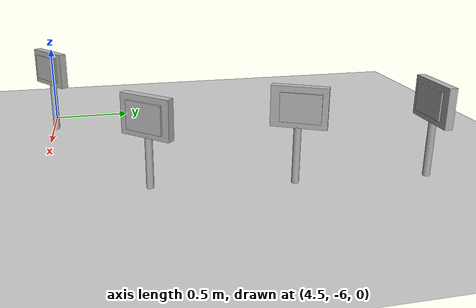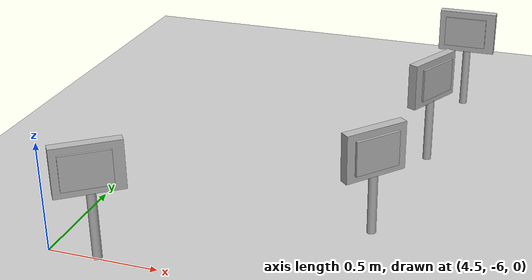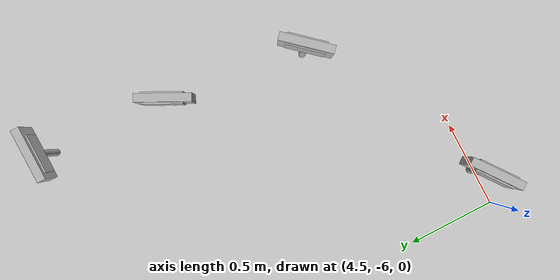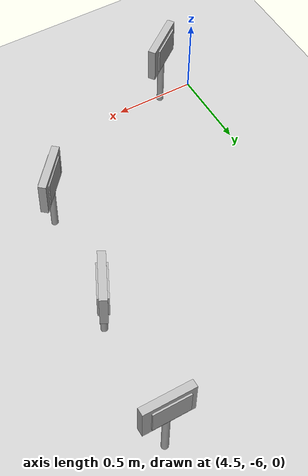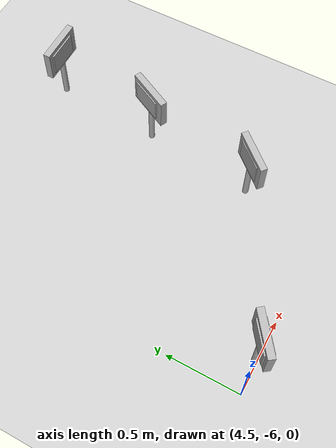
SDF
<sdf version="1.7">
 <world name="default">
  <model name="ground_plane">
   <static>1</static>
   <link name="link">
    <collision name="collision">
     <geometry><plane><normal>0 0 1</normal><size>100 100</size></plane></geometry>
     <surface>
      <contact><collide_bitmask>65535</collide_bitmask></contact>
      <friction><ode><mu>100</mu><mu2>50</mu2></ode></friction>
     </surface>
    </collision>
    <visual name="visual">
     <cast_shadows>0</cast_shadows>
     <geometry><plane><normal>0 0 1</normal><size>100 100</size></plane></geometry>
     <material>
      <script><uri>file://media/materials/scripts/gazebo.material</uri><name>Gazebo/Grey</name></script>
     </material>
    </visual>
   </link>
  </model>
  <model name="letrero_cheems_0">
   <link name="link_0">
    <inertial>
     <mass>0.00543151</mass>
     <inertia>
      <ixx>4.90351e-06</ixx>
      <ixy>0</ixy>
      <ixz>0</ixz>
      <iyy>4.90351e-06</iyy>
      <iyz>0</iyz>
      <izz>1.12837e-07</izz>
     </inertia>
    </inertial>
    <pose>0.002372 -0.000902 -0.178803 0 -0 0</pose>
    <visual name="visual">
     <geometry><cylinder><radius>0.0203836</radius><length>0.327243</length></cylinder></geometry>
     <material>
      <lighting>1</lighting>
      <script>
       <uri>model://letrero_cheems/madera/scripts</uri>
       <uri>model://letrero_cheems/madera/textures</uri>
       <name>textur/madera</name>
      </script>
      <shader type="pixel"/>
      <emissive>0 0 0 1</emissive>
     </material>
    </visual>
    <collision name="collision">
     <geometry><cylinder><radius>0.020384</radius><length>0.327243</length></cylinder></geometry>
     <surface>
      <friction>
       <ode><mu>1</mu><mu2>1</mu2><fdir1>0 0 0</fdir1><slip1>0</slip1><slip2>0</slip2></ode>
       <torsional>
        <coefficient>1</coefficient>
        <patch_radius>0</patch_radius>
        <surface_radius>0</surface_radius>
        <use_patch_radius>1</use_patch_radius>
        <ode><slip>0</slip></ode>
       </torsional>
      </friction>
      <bounce><restitution_coefficient>0</restitution_coefficient><threshold>1e+06</threshold></bounce>
      <contact>
       <collide_without_contact>0</collide_without_contact>
       <collide_without_contact_bitmask>1</collide_without_contact_bitmask>
       <collide_bitmask>1</collide_bitmask>
       <ode>
        <soft_cfm>0</soft_cfm>
        <soft_erp>0.2</soft_erp>
        <kp>1e+13</kp>
        <kd>1</kd>
        <max_vel>0.01</max_vel>
        <min_depth>0</min_depth>
       </ode>
       <bullet>
        <split_impulse>1</split_impulse>
        <split_impulse_penetration_threshold>-0.01</split_impulse_penetration_threshold>
        <soft_cfm>0</soft_cfm>
        <soft_erp>0.2</soft_erp>
        <kp>1e+13</kp>
        <kd>1</kd>
       </bullet>
      </contact>
     </surface>
    </collision>
   </link>
   <link name="link_1">
    <inertial>
     <mass>0.00299633</mass>
     <inertia>
      <ixx>1.27855e-05</ixx>
      <ixy>0</ixy>
      <ixz>0</ixz>
      <iyy>3.42923e-05</iyy>
      <iyz>0</iyz>
      <izz>2.25402e-05</izz>
     </inertia>
    </inertial>
    <pose>-0.001685 -0.003559 0.089666 0 -0 0</pose>
    <visual name="visual">
     <geometry><box><size>0.296988 0.04549 0.221665</size></box></geometry>
     <material>
      <lighting>1</lighting>
      <script>
       <uri>model://letrero_cheems/madera/scripts</uri>
       <uri>model://letrero_cheems/madera/textures</uri>
       <name>textur/madera</name>
      </script>
      <shader type="pixel"/>
      <emissive>0 0 0 1</emissive>
     </material>
    </visual>
    <collision name="collision">
     <geometry><box><size>0.296988 0.04549 0.221665</size></box></geometry>
     <surface>
      <friction>
       <ode><mu>1</mu><mu2>1</mu2><fdir1>0 0 0</fdir1><slip1>0</slip1><slip2>0</slip2></ode>
       <torsional>
        <coefficient>1</coefficient>
        <patch_radius>0</patch_radius>
        <surface_radius>0</surface_radius>
        <use_patch_radius>1</use_patch_radius>
        <ode><slip>0</slip></ode>
       </torsional>
      </friction>
      <bounce><restitution_coefficient>0</restitution_coefficient><threshold>1e+06</threshold></bounce>
      <contact>
       <collide_without_contact>0</collide_without_contact>
       <collide_without_contact_bitmask>1</collide_without_contact_bitmask>
       <collide_bitmask>1</collide_bitmask>
       <ode>
        <soft_cfm>0</soft_cfm>
        <soft_erp>0.2</soft_erp>
        <kp>1e+13</kp>
        <kd>1</kd>
        <max_vel>0.01</max_vel>
        <min_depth>0</min_depth>
       </ode>
       <bullet>
        <split_impulse>1</split_impulse>
        <split_impulse_penetration_threshold>-0.01</split_impulse_penetration_threshold>
        <soft_cfm>0</soft_cfm>
        <soft_erp>0.2</soft_erp>
        <kp>1e+13</kp>
        <kd>1</kd>
       </bullet>
      </contact>
     </surface>
    </collision>
   </link>
   <link name="link_2">
    <inertial>
     <mass>0.00219695</mass>
     <inertia>
      <ixx>5.34209e-06</ixx>
      <ixy>0</ixy>
      <ixz>0</ixz>
      <iyy>1.31531e-05</iyy>
      <iyz>0</iyz>
      <izz>9.31738e-06</izz>
     </inertia>
    </inertial>
    <pose>-0.001275 -0.005928 0.089136 0 -0 0</pose>
    <visual name="visual">
     <geometry><box><size>0.216284 0.06414 0.15832</size></box></geometry>
     <material>
      <lighting>1</lighting>
      <script>
       <uri>model://letrero_cheems/materials/scripts</uri>
       <uri>model://letrero_cheems/materials/textures</uri>
       <name>textur/cheems</name>
      </script>
      <shader type="pixel"/>
      <emissive>0 0 0 1</emissive>
     </material>
    </visual>
    <collision name="collision">
     <geometry><box><size>0.216284 0.06414 0.15832</size></box></geometry>
     <surface>
      <friction>
       <ode><mu>1</mu><mu2>1</mu2><fdir1>0 0 0</fdir1><slip1>0</slip1><slip2>0</slip2></ode>
       <torsional>
        <coefficient>1</coefficient>
        <patch_radius>0</patch_radius>
        <surface_radius>0</surface_radius>
        <use_patch_radius>1</use_patch_radius>
        <ode><slip>0</slip></ode>
       </torsional>
      </friction>
      <bounce><restitution_coefficient>0</restitution_coefficient><threshold>1e+06</threshold></bounce>
      <contact>
       <collide_without_contact>0</collide_without_contact>
       <collide_without_contact_bitmask>1</collide_without_contact_bitmask>
       <collide_bitmask>1</collide_bitmask>
       <ode>
        <soft_cfm>0</soft_cfm>
        <soft_erp>0.2</soft_erp>
        <kp>1e+13</kp>
        <kd>1</kd>
        <max_vel>0.01</max_vel>
        <min_depth>0</min_depth>
       </ode>
       <bullet>
        <split_impulse>1</split_impulse>
        <split_impulse_penetration_threshold>-0.01</split_impulse_penetration_threshold>
        <soft_cfm>0</soft_cfm>
        <soft_erp>0.2</soft_erp>
        <kp>1e+13</kp>
        <kd>1</kd>
       </bullet>
      </contact>
     </surface>
    </collision>
   </link>
   <joint name="link_0_JOINT_1" type="fixed">
    <parent>link_0</parent>
    <child>link_1</child>
    <physics>
     <ode><limit><cfm>0</cfm><erp>0.2</erp></limit><suspension><cfm>0</cfm><erp>0.2</erp></suspension></ode>
    </physics>
   </joint>
   <joint name="link_0_JOINT_2" type="fixed">
    <parent>link_0</parent>
    <child>link_2</child>
    <physics>
     <ode><limit><cfm>0</cfm><erp>0.2</erp></limit><suspension><cfm>0</cfm><erp>0.2</erp></suspension></ode>
    </physics>
   </joint>
   <static>1</static>
   <pose>5.75191 -5.44165 0.303948 0 -0 0.847222</pose>
  </model>
  <model name="letrero_chocho_2">
   <link name="link_0">
    <inertial>
     <mass>0.0543151</mass>
     <inertia>
      <ixx>4.90351e-06</ixx>
      <ixy>0</ixy>
      <ixz>0</ixz>
      <iyy>4.90351e-06</iyy>
      <iyz>0</iyz>
      <izz>1.12837e-07</izz>
     </inertia>
    </inertial>
    <pose>0.002515 0.005109 0.153562 0 -0 0</pose>
    <visual name="visual">
     <geometry><cylinder><radius>0.0203836</radius><length>0.327243</length></cylinder></geometry>
     <material>
      <lighting>1</lighting>
      <script>
       <uri>model://letrero_chocho/madera/scripts</uri>
       <uri>model://letrero_chocho/madera/textures</uri>
       <name>textur/madera</name>
      </script>
      <shader type="pixel"/>
      <emissive>0 0 0 1</emissive>
     </material>
    </visual>
    <collision name="collision">
     <geometry><cylinder><radius>0.020384</radius><length>0.327243</length></cylinder></geometry>
     <surface>
      <friction>
       <ode><mu>1</mu><mu2>1</mu2><fdir1>0 0 0</fdir1><slip1>0</slip1><slip2>0</slip2></ode>
       <torsional>
        <coefficient>1</coefficient>
        <patch_radius>0</patch_radius>
        <surface_radius>0</surface_radius>
        <use_patch_radius>1</use_patch_radius>
        <ode><slip>0</slip></ode>
       </torsional>
      </friction>
      <bounce><restitution_coefficient>0</restitution_coefficient><threshold>1e+06</threshold></bounce>
      <contact>
       <collide_without_contact>0</collide_without_contact>
       <collide_without_contact_bitmask>1</collide_without_contact_bitmask>
       <collide_bitmask>1</collide_bitmask>
       <ode>
        <soft_cfm>0</soft_cfm>
        <soft_erp>0.2</soft_erp>
        <kp>1e+13</kp>
        <kd>1</kd>
        <max_vel>0.01</max_vel>
        <min_depth>0</min_depth>
       </ode>
       <bullet>
        <split_impulse>1</split_impulse>
        <split_impulse_penetration_threshold>-0.01</split_impulse_penetration_threshold>
        <soft_cfm>0</soft_cfm>
        <soft_erp>0.2</soft_erp>
        <kp>1e+13</kp>
        <kd>1</kd>
       </bullet>
      </contact>
     </surface>
    </collision>
   </link>
   <link name="link_1">
    <inertial>
     <mass>0.00299633</mass>
     <inertia>
      <ixx>1.27855e-05</ixx>
      <ixy>0</ixy>
      <ixz>0</ixz>
      <iyy>3.42923e-05</iyy>
      <iyz>0</iyz>
      <izz>2.25402e-05</izz>
     </inertia>
    </inertial>
    <pose>-0.001542 0.002452 0.422031 0 -0 0</pose>
    <visual name="visual">
     <geometry><box><size>0.296988 0.04549 0.221665</size></box></geometry>
     <material>
      <lighting>1</lighting>
      <script>
       <uri>model://letrero_chocho/madera/scripts</uri>
       <uri>model://letrero_chocho/madera/textures</uri>
       <name>textur/madera</name>
      </script>
      <shader type="pixel"/>
      <emissive>0 0 0 1</emissive>
     </material>
    </visual>
    <collision name="collision">
     <geometry><box><size>0.296988 0.04549 0.221665</size></box></geometry>
     <surface>
      <friction>
       <ode><mu>1</mu><mu2>1</mu2><fdir1>0 0 0</fdir1><slip1>0</slip1><slip2>0</slip2></ode>
       <torsional>
        <coefficient>1</coefficient>
        <patch_radius>0</patch_radius>
        <surface_radius>0</surface_radius>
        <use_patch_radius>1</use_patch_radius>
        <ode><slip>0</slip></ode>
       </torsional>
      </friction>
      <bounce><restitution_coefficient>0</restitution_coefficient><threshold>1e+06</threshold></bounce>
      <contact>
       <collide_without_contact>0</collide_without_contact>
       <collide_without_contact_bitmask>1</collide_without_contact_bitmask>
       <collide_bitmask>1</collide_bitmask>
       <ode>
        <soft_cfm>0</soft_cfm>
        <soft_erp>0.2</soft_erp>
        <kp>1e+13</kp>
        <kd>1</kd>
        <max_vel>0.01</max_vel>
        <min_depth>0</min_depth>
       </ode>
       <bullet>
        <split_impulse>1</split_impulse>
        <split_impulse_penetration_threshold>-0.01</split_impulse_penetration_threshold>
        <soft_cfm>0</soft_cfm>
        <soft_erp>0.2</soft_erp>
        <kp>1e+13</kp>
        <kd>1</kd>
       </bullet>
      </contact>
     </surface>
    </collision>
   </link>
   <link name="link_2">
    <inertial>
     <mass>0.00173577</mass>
     <inertia>
      <ixx>4.23206e-06</ixx>
      <ixy>0</ixy>
      <ixz>0</ixz>
      <iyy>1.03921e-05</iyy>
      <iyz>0</iyz>
      <izz>7.37287e-06</izz>
     </inertia>
    </inertial>
    <pose>-0.010225 0.002657 0.421501 0 -0 0</pose>
    <visual name="visual">
     <geometry><box><size>0.216284 0.064749 0.15832</size></box></geometry>
     <material>
      <lighting>1</lighting>
      <script>
       <uri>model://letrero_chocho/materials/scripts</uri>
       <uri>model://letrero_chocho/materials/textures</uri>
       <name>textur/cho</name>
      </script>
      <shader type="pixel"/>
      <emissive>0 0 0 1</emissive>
     </material>
    </visual>
    <collision name="collision">
     <geometry><box><size>0.216284 0.064749 0.15832</size></box></geometry>
     <surface>
      <friction>
       <ode><mu>1</mu><mu2>1</mu2><fdir1>0 0 0</fdir1><slip1>0</slip1><slip2>0</slip2></ode>
       <torsional>
        <coefficient>1</coefficient>
        <patch_radius>0</patch_radius>
        <surface_radius>0</surface_radius>
        <use_patch_radius>1</use_patch_radius>
        <ode><slip>0</slip></ode>
       </torsional>
      </friction>
      <bounce><restitution_coefficient>0</restitution_coefficient><threshold>1e+06</threshold></bounce>
      <contact>
       <collide_without_contact>0</collide_without_contact>
       <collide_without_contact_bitmask>1</collide_without_contact_bitmask>
       <collide_bitmask>1</collide_bitmask>
       <ode>
        <soft_cfm>0</soft_cfm>
        <soft_erp>0.2</soft_erp>
        <kp>1e+13</kp>
        <kd>1</kd>
        <max_vel>0.01</max_vel>
        <min_depth>0</min_depth>
       </ode>
       <bullet>
        <split_impulse>1</split_impulse>
        <split_impulse_penetration_threshold>-0.01</split_impulse_penetration_threshold>
        <soft_cfm>0</soft_cfm>
        <soft_erp>0.2</soft_erp>
        <kp>1e+13</kp>
        <kd>1</kd>
       </bullet>
      </contact>
     </surface>
    </collision>
   </link>
   <joint name="link_0_JOINT_1" type="fixed">
    <parent>link_0</parent>
    <child>link_1</child>
    <physics>
     <ode><limit><cfm>0</cfm><erp>0.2</erp></limit><suspension><cfm>0</cfm><erp>0.2</erp></suspension></ode>
    </physics>
   </joint>
   <joint name="link_0_JOINT_2" type="fixed">
    <parent>link_0</parent>
    <child>link_2</child>
    <physics>
     <ode><limit><cfm>0</cfm><erp>0.2</erp></limit><suspension><cfm>0</cfm><erp>0.2</erp></suspension></ode>
    </physics>
   </joint>
   <static>1</static>
   <pose>5.84295 -4.66823 0 0 0 -2.03941</pose>
  </model>
  <model name="letrero_riego_1">
   <link name="link_0">
    <inertial>
     <mass>0.0543151</mass>
     <inertia>
      <ixx>4.90351e-06</ixx>
      <ixy>0</ixy>
      <ixz>0</ixz>
      <iyy>4.90351e-06</iyy>
      <iyz>0</iyz>
      <izz>1.12837e-07</izz>
     </inertia>
    </inertial>
    <pose>0.002515 0.005109 0.153562 0 -0 0</pose>
    <visual name="visual">
     <geometry><cylinder><radius>0.0203836</radius><length>0.327243</length></cylinder></geometry>
     <material>
      <lighting>1</lighting>
      <script>
       <uri>model://letrero_riego/madera/scripts</uri>
       <uri>model://letrero_riego/madera/textures</uri>
       <name>textur/madera</name>
      </script>
      <shader type="pixel"/>
      <emissive>0 0 0 1</emissive>
     </material>
    </visual>
    <collision name="collision">
     <geometry><cylinder><radius>0.020384</radius><length>0.327243</length></cylinder></geometry>
     <surface>
      <friction>
       <ode><mu>1</mu><mu2>1</mu2><fdir1>0 0 0</fdir1><slip1>0</slip1><slip2>0</slip2></ode>
       <torsional>
        <coefficient>1</coefficient>
        <patch_radius>0</patch_radius>
        <surface_radius>0</surface_radius>
        <use_patch_radius>1</use_patch_radius>
        <ode><slip>0</slip></ode>
       </torsional>
      </friction>
      <bounce><restitution_coefficient>0</restitution_coefficient><threshold>1e+06</threshold></bounce>
      <contact>
       <collide_without_contact>0</collide_without_contact>
       <collide_without_contact_bitmask>1</collide_without_contact_bitmask>
       <collide_bitmask>1</collide_bitmask>
       <ode>
        <soft_cfm>0</soft_cfm>
        <soft_erp>0.2</soft_erp>
        <kp>1e+13</kp>
        <kd>1</kd>
        <max_vel>0.01</max_vel>
        <min_depth>0</min_depth>
       </ode>
       <bullet>
        <split_impulse>1</split_impulse>
        <split_impulse_penetration_threshold>-0.01</split_impulse_penetration_threshold>
        <soft_cfm>0</soft_cfm>
        <soft_erp>0.2</soft_erp>
        <kp>1e+13</kp>
        <kd>1</kd>
       </bullet>
      </contact>
     </surface>
    </collision>
   </link>
   <link name="link_1">
    <inertial>
     <mass>0.00299633</mass>
     <inertia>
      <ixx>1.27855e-05</ixx>
      <ixy>0</ixy>
      <ixz>0</ixz>
      <iyy>3.42923e-05</iyy>
      <iyz>0</iyz>
      <izz>2.25402e-05</izz>
     </inertia>
    </inertial>
    <pose>-0.001542 0.002452 0.422031 0 -0 0</pose>
    <visual name="visual">
     <geometry><box><size>0.296988 0.04549 0.221665</size></box></geometry>
     <material>
      <lighting>1</lighting>
      <script>
       <uri>model://letrero_riego/madera/scripts</uri>
       <uri>model://letrero_riego/madera/textures</uri>
       <name>textur/madera</name>
      </script>
      <shader type="pixel"/>
      <emissive>0 0 0 1</emissive>
     </material>
    </visual>
    <collision name="collision">
     <geometry><box><size>0.296988 0.04549 0.221665</size></box></geometry>
     <surface>
      <friction>
       <ode><mu>1</mu><mu2>1</mu2><fdir1>0 0 0</fdir1><slip1>0</slip1><slip2>0</slip2></ode>
       <torsional>
        <coefficient>1</coefficient>
        <patch_radius>0</patch_radius>
        <surface_radius>0</surface_radius>
        <use_patch_radius>1</use_patch_radius>
        <ode><slip>0</slip></ode>
       </torsional>
      </friction>
      <bounce><restitution_coefficient>0</restitution_coefficient><threshold>1e+06</threshold></bounce>
      <contact>
       <collide_without_contact>0</collide_without_contact>
       <collide_without_contact_bitmask>1</collide_without_contact_bitmask>
       <collide_bitmask>1</collide_bitmask>
       <ode>
        <soft_cfm>0</soft_cfm>
        <soft_erp>0.2</soft_erp>
        <kp>1e+13</kp>
        <kd>1</kd>
        <max_vel>0.01</max_vel>
        <min_depth>0</min_depth>
       </ode>
       <bullet>
        <split_impulse>1</split_impulse>
        <split_impulse_penetration_threshold>-0.01</split_impulse_penetration_threshold>
        <soft_cfm>0</soft_cfm>
        <soft_erp>0.2</soft_erp>
        <kp>1e+13</kp>
        <kd>1</kd>
       </bullet>
      </contact>
     </surface>
    </collision>
   </link>
   <link name="link_2">
    <inertial>
     <mass>0.00173577</mass>
     <inertia>
      <ixx>4.23206e-06</ixx>
      <ixy>0</ixy>
      <ixz>0</ixz>
      <iyy>1.03921e-05</iyy>
      <iyz>0</iyz>
      <izz>7.37287e-06</izz>
     </inertia>
    </inertial>
    <pose>-0.010225 0.002657 0.421501 0 -0 0</pose>
    <visual name="visual">
     <geometry><box><size>0.216284 0.064749 0.15832</size></box></geometry>
     <material>
      <lighting>1</lighting>
      <script>
       <uri>model://letrero_riego/materials/scripts</uri>
       <uri>model://letrero_riego/materials/textures</uri>
       <name>textur/riego</name>
      </script>
      <shader type="pixel"/>
      <emissive>0 0 0 1</emissive>
     </material>
    </visual>
    <collision name="collision">
     <geometry><box><size>0.216284 0.064749 0.15832</size></box></geometry>
     <surface>
      <friction>
       <ode><mu>1</mu><mu2>1</mu2><fdir1>0 0 0</fdir1><slip1>0</slip1><slip2>0</slip2></ode>
       <torsional>
        <coefficient>1</coefficient>
        <patch_radius>0</patch_radius>
        <surface_radius>0</surface_radius>
        <use_patch_radius>1</use_patch_radius>
        <ode><slip>0</slip></ode>
       </torsional>
      </friction>
      <bounce><restitution_coefficient>0</restitution_coefficient><threshold>1e+06</threshold></bounce>
      <contact>
       <collide_without_contact>0</collide_without_contact>
       <collide_without_contact_bitmask>1</collide_without_contact_bitmask>
       <collide_bitmask>1</collide_bitmask>
       <ode>
        <soft_cfm>0</soft_cfm>
        <soft_erp>0.2</soft_erp>
        <kp>1e+13</kp>
        <kd>1</kd>
        <max_vel>0.01</max_vel>
        <min_depth>0</min_depth>
       </ode>
       <bullet>
        <split_impulse>1</split_impulse>
        <split_impulse_penetration_threshold>-0.01</split_impulse_penetration_threshold>
        <soft_cfm>0</soft_cfm>
        <soft_erp>0.2</soft_erp>
        <kp>1e+13</kp>
        <kd>1</kd>
       </bullet>
      </contact>
     </surface>
    </collision>
   </link>
   <joint name="link_0_JOINT_1" type="fixed">
    <parent>link_0</parent>
    <child>link_1</child>
    <physics>
     <ode><limit><cfm>0</cfm><erp>0.2</erp></limit><suspension><cfm>0</cfm><erp>0.2</erp></suspension></ode>
    </physics>
   </joint>
   <joint name="link_0_JOINT_2" type="fixed">
    <parent>link_0</parent>
    <child>link_2</child>
    <physics>
     <ode><limit><cfm>0</cfm><erp>0.2</erp></limit><suspension><cfm>0</cfm><erp>0.2</erp></suspension></ode>
    </physics>
   </joint>
   <static>1</static>
   <pose>5.90462 -3.93684 0 0 -0 0</pose>
  </model>
  <model name="letrero_pajaro_5">
   <link name="link_0">
    <inertial>
     <mass>0.0543151</mass>
     <inertia>
      <ixx>4.90351e-06</ixx>
      <ixy>0</ixy>
      <ixz>0</ixz>
      <iyy>4.90351e-06</iyy>
      <iyz>0</iyz>
      <izz>1.12837e-07</izz>
     </inertia>
    </inertial>
    <pose>0.002515 0.005109 0.153562 0 -0 0</pose>
    <visual name="visual">
     <geometry><cylinder><radius>0.0203836</radius><length>0.327243</length></cylinder></geometry>
     <material>
      <lighting>1</lighting>
      <script>
       <uri>model://letrero_pajaro/madera/scripts</uri>
       <uri>model://letrero_pajaro/madera/textures</uri>
       <name>textur/madera</name>
      </script>
      <shader type="pixel"/>
      <emissive>0 0 0 1</emissive>
     </material>
    </visual>
    <collision name="collision">
     <geometry><cylinder><radius>0.020384</radius><length>0.327243</length></cylinder></geometry>
     <surface>
      <friction>
       <ode><mu>1</mu><mu2>1</mu2><fdir1>0 0 0</fdir1><slip1>0</slip1><slip2>0</slip2></ode>
       <torsional>
        <coefficient>1</coefficient>
        <patch_radius>0</patch_radius>
        <surface_radius>0</surface_radius>
        <use_patch_radius>1</use_patch_radius>
        <ode><slip>0</slip></ode>
       </torsional>
      </friction>
      <bounce><restitution_coefficient>0</restitution_coefficient><threshold>1e+06</threshold></bounce>
      <contact>
       <collide_without_contact>0</collide_without_contact>
       <collide_without_contact_bitmask>1</collide_without_contact_bitmask>
       <collide_bitmask>1</collide_bitmask>
       <ode>
        <soft_cfm>0</soft_cfm>
        <soft_erp>0.2</soft_erp>
        <kp>1e+13</kp>
        <kd>1</kd>
        <max_vel>0.01</max_vel>
        <min_depth>0</min_depth>
       </ode>
       <bullet>
        <split_impulse>1</split_impulse>
        <split_impulse_penetration_threshold>-0.01</split_impulse_penetration_threshold>
        <soft_cfm>0</soft_cfm>
        <soft_erp>0.2</soft_erp>
        <kp>1e+13</kp>
        <kd>1</kd>
       </bullet>
      </contact>
     </surface>
    </collision>
   </link>
   <link name="link_1">
    <inertial>
     <mass>0.00299633</mass>
     <inertia>
      <ixx>1.27855e-05</ixx>
      <ixy>0</ixy>
      <ixz>0</ixz>
      <iyy>3.42923e-05</iyy>
      <iyz>0</iyz>
      <izz>2.25402e-05</izz>
     </inertia>
    </inertial>
    <pose>-0.001542 0.002452 0.422031 0 -0 0</pose>
    <visual name="visual">
     <geometry><box><size>0.296988 0.04549 0.221665</size></box></geometry>
     <material>
      <lighting>1</lighting>
      <script>
       <uri>model://letrero_pajaro/madera/scripts</uri>
       <uri>model://letrero_pajaro/madera/textures</uri>
       <name>textur/madera</name>
      </script>
      <shader type="pixel"/>
      <emissive>0 0 0 1</emissive>
     </material>
    </visual>
    <collision name="collision">
     <geometry><box><size>0.296988 0.04549 0.221665</size></box></geometry>
     <surface>
      <friction>
       <ode><mu>1</mu><mu2>1</mu2><fdir1>0 0 0</fdir1><slip1>0</slip1><slip2>0</slip2></ode>
       <torsional>
        <coefficient>1</coefficient>
        <patch_radius>0</patch_radius>
        <surface_radius>0</surface_radius>
        <use_patch_radius>1</use_patch_radius>
        <ode><slip>0</slip></ode>
       </torsional>
      </friction>
      <bounce><restitution_coefficient>0</restitution_coefficient><threshold>1e+06</threshold></bounce>
      <contact>
       <collide_without_contact>0</collide_without_contact>
       <collide_without_contact_bitmask>1</collide_without_contact_bitmask>
       <collide_bitmask>1</collide_bitmask>
       <ode>
        <soft_cfm>0</soft_cfm>
        <soft_erp>0.2</soft_erp>
        <kp>1e+13</kp>
        <kd>1</kd>
        <max_vel>0.01</max_vel>
        <min_depth>0</min_depth>
       </ode>
       <bullet>
        <split_impulse>1</split_impulse>
        <split_impulse_penetration_threshold>-0.01</split_impulse_penetration_threshold>
        <soft_cfm>0</soft_cfm>
        <soft_erp>0.2</soft_erp>
        <kp>1e+13</kp>
        <kd>1</kd>
       </bullet>
      </contact>
     </surface>
    </collision>
   </link>
   <link name="link_2">
    <inertial>
     <mass>0.00173577</mass>
     <inertia>
      <ixx>4.23206e-06</ixx>
      <ixy>0</ixy>
      <ixz>0</ixz>
      <iyy>1.03921e-05</iyy>
      <iyz>0</iyz>
      <izz>7.37287e-06</izz>
     </inertia>
    </inertial>
    <pose>-0.010225 0.002657 0.421501 0 -0 0</pose>
    <visual name="visual">
     <geometry><box><size>0.216284 0.064749 0.15832</size></box></geometry>
     <material>
      <lighting>1</lighting>
      <script>
       <uri>model://letrero_pajaro/materials/scripts</uri>
       <uri>model://letrero_pajaro/materials/textures</uri>
       <name>textur/paj</name>
      </script>
      <shader type="pixel"/>
      <emissive>0 0 0 1</emissive>
     </material>
    </visual>
    <collision name="collision">
     <geometry><box><size>0.216284 0.064749 0.15832</size></box></geometry>
     <surface>
      <friction>
       <ode><mu>1</mu><mu2>1</mu2><fdir1>0 0 0</fdir1><slip1>0</slip1><slip2>0</slip2></ode>
       <torsional>
        <coefficient>1</coefficient>
        <patch_radius>0</patch_radius>
        <surface_radius>0</surface_radius>
        <use_patch_radius>1</use_patch_radius>
        <ode><slip>0</slip></ode>
       </torsional>
      </friction>
      <bounce><restitution_coefficient>0</restitution_coefficient><threshold>1e+06</threshold></bounce>
      <contact>
       <collide_without_contact>0</collide_without_contact>
       <collide_without_contact_bitmask>1</collide_without_contact_bitmask>
       <collide_bitmask>1</collide_bitmask>
       <ode>
        <soft_cfm>0</soft_cfm>
        <soft_erp>0.2</soft_erp>
        <kp>1e+13</kp>
        <kd>1</kd>
        <max_vel>0.01</max_vel>
        <min_depth>0</min_depth>
       </ode>
       <bullet>
        <split_impulse>1</split_impulse>
        <split_impulse_penetration_threshold>-0.01</split_impulse_penetration_threshold>
        <soft_cfm>0</soft_cfm>
        <soft_erp>0.2</soft_erp>
        <kp>1e+13</kp>
        <kd>1</kd>
       </bullet>
      </contact>
     </surface>
    </collision>
   </link>
   <joint name="link_0_JOINT_1" type="fixed">
    <parent>link_0</parent>
    <child>link_1</child>
    <physics>
     <ode><limit><cfm>0</cfm><erp>0.2</erp></limit><suspension><cfm>0</cfm><erp>0.2</erp></suspension></ode>
    </physics>
   </joint>
   <joint name="link_0_JOINT_2" type="fixed">
    <parent>link_0</parent>
    <child>link_2</child>
    <physics>
     <ode><limit><cfm>0</cfm><erp>0.2</erp></limit><suspension><cfm>0</cfm><erp>0.2</erp></suspension></ode>
    </physics>
   </joint>
   <static>1</static>
   <pose>4.72131 -5.99018 0 0 -0 0.639721</pose>
  </model>
 </world>
</sdf>
